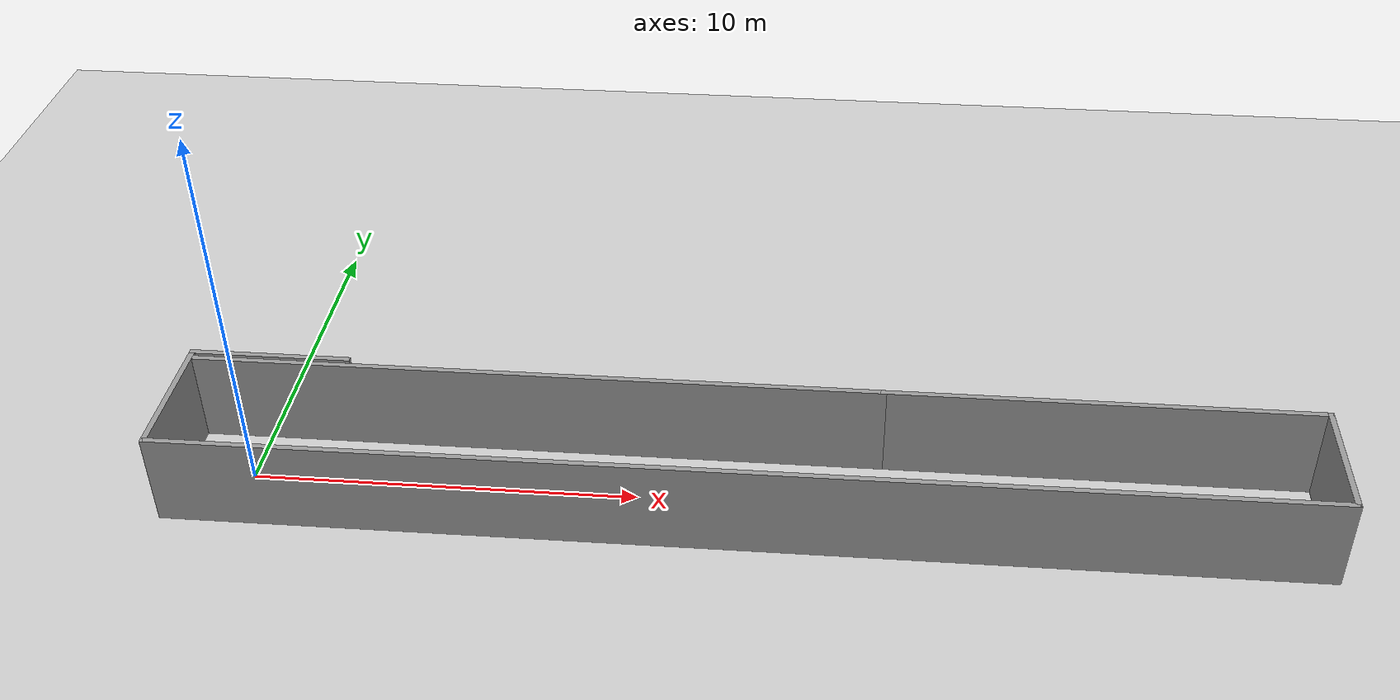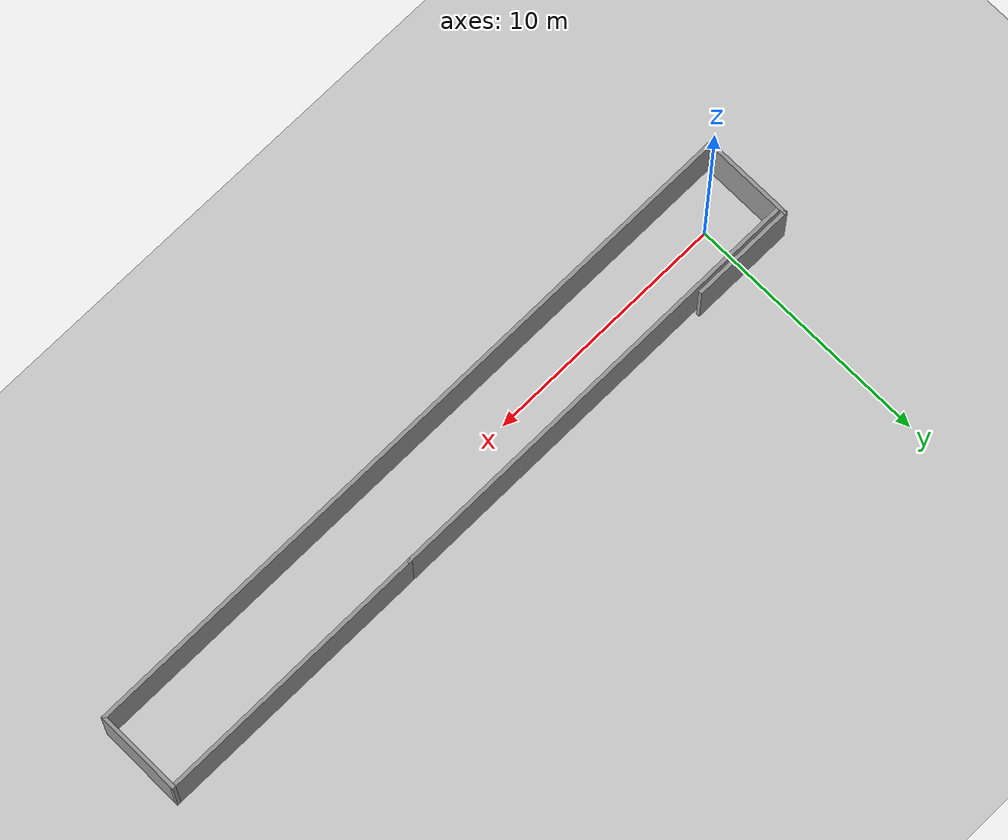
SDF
<sdf version="1.7">
 <world name="default">
  <light name="sun" type="directional">
   <pose>0 0 10 0 -0 0</pose>
   <diffuse>0.8 0.8 0.8 1</diffuse>
   <specular>0.2 0.2 0.2 1</specular>
   <attenuation>
    <range>1000</range>
    <constant>0.9</constant>
    <linear>0.01</linear>
    <quadratic>0.001</quadratic>
   </attenuation>
   <direction>-0.5 0.1 -0.9</direction>
   <spot><inner_angle>0</inner_angle><outer_angle>0</outer_angle><falloff>0</falloff></spot>
  </light>
  <model name="ground_plane">
   <static>1</static>
   <link name="link">
    <collision name="collision">
     <geometry><plane><normal>0 0 1</normal><size>100 100</size></plane></geometry>
     <surface><friction><ode><mu>100</mu><mu2>50</mu2></ode></friction></surface>
    </collision>
    <visual name="visual">
     <cast_shadows>0</cast_shadows>
     <geometry><plane><normal>0 0 1</normal><size>100 100</size></plane></geometry>
     <material>
      <script><uri>file://media/materials/scripts/gazebo.material</uri><name>Gazebo/Grey</name></script>
     </material>
    </visual>
   </link>
  </model>
  <gravity>0 0 -9.8</gravity>
  <magnetic_field>6e-06 2.3e-05 -4.2e-05</magnetic_field>
  <atmosphere type="adiabatic"/>
  <physics type="ode">
   <max_step_size>0.001</max_step_size>
   <real_time_factor>1</real_time_factor>
   <real_time_update_rate>1000</real_time_update_rate>
  </physics>
  <scene><ambient>0.4 0.4 0.4 1</ambient><background>0.7 0.7 0.7 1</background><shadows>1</shadows></scene>
  <audio><device>default</device></audio>
  <spherical_coordinates>
   <surface_model>EARTH_WGS84</surface_model>
   <latitude_deg>0</latitude_deg>
   <longitude_deg>0</longitude_deg>
   <elevation>0</elevation>
   <heading_deg>0</heading_deg>
  </spherical_coordinates>
  <model name="walls_v1">
   <pose>12.6967 0.133822 0 0 -0 0</pose>
   <link name="wall_1">
    <collision name="wall_1_collision">
     <geometry><box><size>4.25 0.15 2.5</size></box></geometry>
     <pose>0 0 1.25 0 -0 0</pose>
    </collision>
    <visual name="wall_1_visual">
     <pose>0 0 1.25 0 -0 0</pose>
     <geometry><box><size>4.25 0.15 2.5</size></box></geometry>
     <material>
      <script><uri>file://media/materials/scripts/gazebo.material</uri><name>Gazebo/Grey</name></script>
      <ambient>1 1 1 1</ambient>
     </material>
     <meta><layer>0</layer></meta>
    </visual>
    <pose>-12.5 1.8 0 0 -0 3.14159</pose>
   </link>
   <link name="wall_2">
    <collision name="wall_2_collision">
     <geometry><box><size>3.75 0.15 2.5</size></box></geometry>
     <pose>0 0 1.25 0 -0 0</pose>
    </collision>
    <visual name="wall_2_visual">
     <pose>0 0 1.25 0 -0 0</pose>
     <geometry><box><size>3.75 0.15 2.5</size></box></geometry>
     <material>
      <script><uri>file://media/materials/scripts/gazebo.material</uri><name>Gazebo/Grey</name></script>
      <ambient>1 1 1 1</ambient>
     </material>
     <meta><layer>0</layer></meta>
    </visual>
    <pose>-14.55 0 0 0 -0 -1.5708</pose>
   </link>
   <link name="wall_3">
    <collision name="wall_3_collision">
     <geometry><box><size>29.25 0.15 2.5</size></box></geometry>
     <pose>0 0 1.25 0 -0 0</pose>
    </collision>
    <visual name="wall_3_visual">
     <pose>0 0 1.25 0 -0 0</pose>
     <geometry><box><size>29.25 0.15 2.5</size></box></geometry>
     <material>
      <script><uri>file://media/materials/scripts/gazebo.material</uri><name>Gazebo/Grey</name></script>
      <ambient>1 1 1 1</ambient>
     </material>
     <meta><layer>0</layer></meta>
    </visual>
    <pose>-0 -1.8 0 0 -0 0</pose>
   </link>
   <link name="wall_4">
    <collision name="wall_4_collision">
     <geometry><box><size>3.5 0.15 2.5</size></box></geometry>
     <pose>0 0 1.25 0 -0 0</pose>
    </collision>
    <visual name="wall_4_visual">
     <pose>0 0 1.25 0 -0 0</pose>
     <geometry><box><size>3.5 0.15 2.5</size></box></geometry>
     <material>
      <script><uri>file://media/materials/scripts/gazebo.material</uri><name>Gazebo/Grey</name></script>
      <ambient>1 1 1 1</ambient>
     </material>
     <meta><layer>0</layer></meta>
    </visual>
    <pose>14.55 -0.125 0 0 -0 1.5708</pose>
   </link>
   <link name="wall_5">
    <collision name="wall_5_collision">
     <geometry><box><size>11.25 0.15 2.5</size></box></geometry>
     <pose>0 0 1.25 0 -0 0</pose>
    </collision>
    <visual name="wall_5_visual">
     <pose>0 0 1.25 0 -0 0</pose>
     <geometry><box><size>11.25 0.15 2.5</size></box></geometry>
     <material>
      <script><uri>file://media/materials/scripts/gazebo.material</uri><name>Gazebo/Grey</name></script>
      <ambient>1 1 1 1</ambient>
     </material>
     <meta><layer>0</layer></meta>
    </visual>
    <pose>9 1.55 0 0 -0 3.14159</pose>
   </link>
   <link name="wall_6">
    <collision name="wall_6_collision">
     <geometry><box><size>18 0.15 2.5</size></box></geometry>
     <pose>0 0 1.25 0 -0 0</pose>
    </collision>
    <visual name="wall_6_visual">
     <pose>0 0 1.25 0 -0 0</pose>
     <geometry><box><size>18 0.15 2.5</size></box></geometry>
     <material>
      <script><uri>file://media/materials/scripts/gazebo.material</uri><name>Gazebo/Grey</name></script>
      <ambient>1 1 1 1</ambient>
     </material>
     <meta><layer>0</layer></meta>
    </visual>
    <pose>-5.475 1.55 0 0 -0 3.14159</pose>
   </link>
   <static>1</static>
  </model>
 </world>
</sdf>
